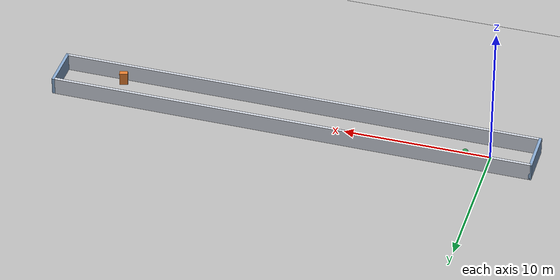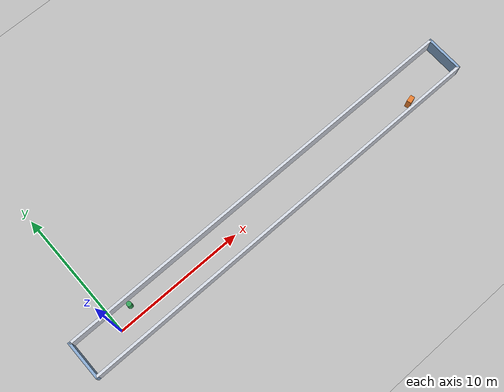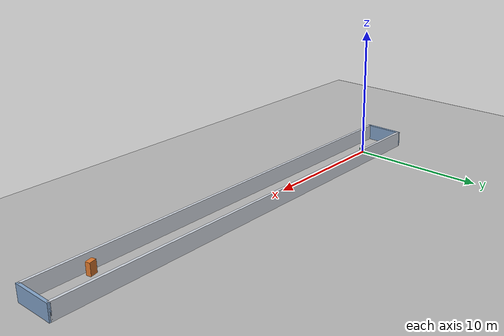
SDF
<?xml version="1.0"?>
<sdf version="1.10">
  <world name="slam_world">
    <physics name="default_physics" type="ode">
      <max_step_size>0.004</max_step_size>
      <real_time_factor>1.0</real_time_factor>
      <real_time_update_rate>250</real_time_update_rate>
    </physics>

    <plugin filename="gz-sim-physics-system" name="gz::sim::systems::Physics"/>
    <plugin filename="gz-sim-user-commands-system" name="gz::sim::systems::UserCommands"/>
    <plugin filename="gz-sim-scene-broadcaster-system" name="gz::sim::systems::SceneBroadcaster"/>
    <plugin filename="gz-sim-imu-system" name="gz::sim::systems::Imu"/>
    <plugin filename="gz-sim-sensors-system" name="gz::sim::systems::Sensors">
      <render_engine>ogre2</render_engine>
    </plugin>

    <gravity>0 0 -9.81</gravity>

    <scene>
      <ambient>0.45 0.45 0.45 1</ambient>
      <background>0.75 0.80 0.85 1</background>
      <shadows>false</shadows>
      <grid>true</grid>
    </scene>

    <light name="sun" type="directional">
      <cast_shadows>false</cast_shadows>
      <pose>12 0 12 0 0 0</pose>
      <diffuse>0.9 0.9 0.9 1</diffuse>
      <specular>0.2 0.2 0.2 1</specular>
      <attenuation>
        <range>1000</range>
        <constant>0.9</constant>
        <linear>0.01</linear>
        <quadratic>0.001</quadratic>
      </attenuation>
      <direction>-0.4 0.2 -1.0</direction>
    </light>

    <model name="ground_plane">
      <static>true</static>
      <link name="ground_link">
        <collision name="ground_collision">
          <geometry>
            <plane>
              <normal>0 0 1</normal>
              <size>80 20</size>
            </plane>
          </geometry>
          <surface>
            <friction>
              <ode><mu>1.0</mu><mu2>1.0</mu2></ode>
            </friction>
          </surface>
        </collision>
        <visual name="ground_visual">
          <geometry>
            <plane>
              <normal>0 0 1</normal>
              <size>80 20</size>
            </plane>
          </geometry>
          <material>
            <ambient>0.64 0.64 0.64 1</ambient>
            <diffuse>0.72 0.72 0.72 1</diffuse>
          </material>
        </visual>
      </link>
    </model>

    <model name="degenerate_corridor">
      <static>true</static>
      <link name="corridor_link">
        <collision name="north_wall_collision">
          <pose>13.5 1.40 0.60 0 0 0</pose>
          <geometry><box><size>33.0 0.20 1.20</size></box></geometry>
        </collision>
        <visual name="north_wall_visual">
          <pose>13.5 1.40 0.60 0 0 0</pose>
          <geometry><box><size>33.0 0.20 1.20</size></box></geometry>
          <material>
            <ambient>0.82 0.84 0.88 1</ambient>
            <diffuse>0.82 0.84 0.88 1</diffuse>
          </material>
        </visual>

        <collision name="south_wall_collision">
          <pose>13.5 -1.40 0.60 0 0 0</pose>
          <geometry><box><size>33.0 0.20 1.20</size></box></geometry>
        </collision>
        <visual name="south_wall_visual">
          <pose>13.5 -1.40 0.60 0 0 0</pose>
          <geometry><box><size>33.0 0.20 1.20</size></box></geometry>
          <material>
            <ambient>0.82 0.84 0.88 1</ambient>
            <diffuse>0.82 0.84 0.88 1</diffuse>
          </material>
        </visual>

        <collision name="entrance_wall_collision">
          <pose>-3.0 0 0.60 0 0 0</pose>
          <geometry><box><size>0.20 3.0 1.20</size></box></geometry>
        </collision>
        <visual name="entrance_wall_visual">
          <pose>-3.0 0 0.60 0 0 0</pose>
          <geometry><box><size>0.20 3.0 1.20</size></box></geometry>
          <material>
            <ambient>0.52 0.65 0.80 1</ambient>
            <diffuse>0.52 0.65 0.80 1</diffuse>
          </material>
        </visual>

        <collision name="exit_wall_collision">
          <pose>30.0 0 0.60 0 0 0</pose>
          <geometry><box><size>0.20 3.0 1.20</size></box></geometry>
        </collision>
        <visual name="exit_wall_visual">
          <pose>30.0 0 0.60 0 0 0</pose>
          <geometry><box><size>0.20 3.0 1.20</size></box></geometry>
          <material>
            <ambient>0.52 0.65 0.80 1</ambient>
            <diffuse>0.52 0.65 0.80 1</diffuse>
          </material>
        </visual>

        <!-- Entrance anchor: visible only near the beginning. -->
        <collision name="entrance_anchor_collision">
          <pose>1.5 0.92 0.50 0 0 0</pose>
          <geometry><cylinder><radius>0.18</radius><length>1.0</length></cylinder></geometry>
        </collision>
        <visual name="entrance_anchor_visual">
          <pose>1.5 0.92 0.50 0 0 0</pose>
          <geometry><cylinder><radius>0.18</radius><length>1.0</length></cylinder></geometry>
          <material>
            <ambient>0.20 0.62 0.34 1</ambient>
            <diffuse>0.20 0.62 0.34 1</diffuse>
          </material>
        </visual>

        <!-- Exit anchor: asymmetric and clear of the centerline. -->
        <collision name="exit_anchor_collision">
          <pose>25.8 -0.90 0.45 0 0 0.25</pose>
          <geometry><box><size>0.55 0.35 0.90</size></box></geometry>
        </collision>
        <visual name="exit_anchor_visual">
          <pose>25.8 -0.90 0.45 0 0 0.25</pose>
          <geometry><box><size>0.55 0.35 0.90</size></box></geometry>
          <material>
            <ambient>0.88 0.48 0.18 1</ambient>
            <diffuse>0.88 0.48 0.18 1</diffuse>
          </material>
        </visual>
      </link>
    </model>

    <gui fullscreen="false">
      <plugin filename="MinimalScene" name="3D View">
        <gz-gui>
          <title>3D View</title>
          <property key="showTitleBar" type="bool">false</property>
          <property key="state" type="string">docked</property>
        </gz-gui>
        <engine>ogre2</engine>
        <scene>scene</scene>
        <ambient_light>0.4 0.4 0.4</ambient_light>
        <background_color>0.75 0.80 0.85</background_color>
        <camera_pose>10 -8 8 0 0.55 0.55</camera_pose>
        <camera_clip><near>0.10</near><far>1000</far></camera_clip>
      </plugin>
      <plugin filename="GzSceneManager" name="Scene Manager"/>
      <plugin filename="WorldControl" name="World control">
        <gz-gui>
          <title>World control</title>
          <property key="showTitleBar" type="bool">false</property>
          <property key="state" type="string">docked</property>
        </gz-gui>
        <play_pause>true</play_pause>
        <step>true</step>
        <start_paused>false</start_paused>
      </plugin>
    </gui>
  </world>
</sdf>
